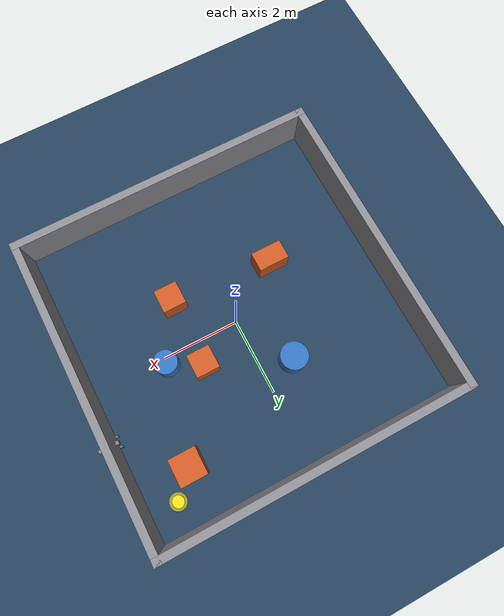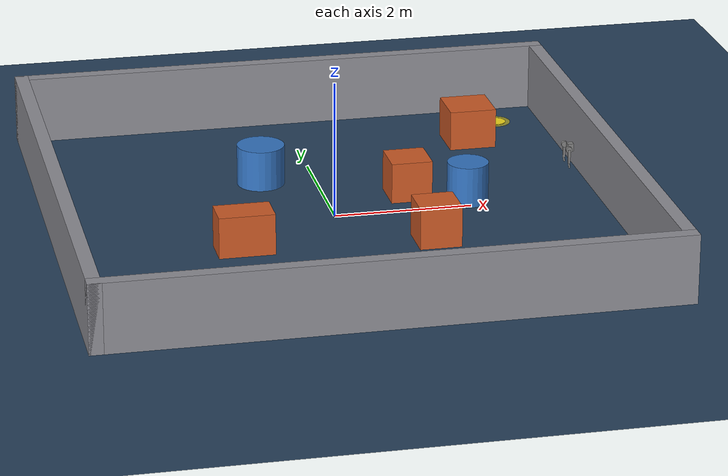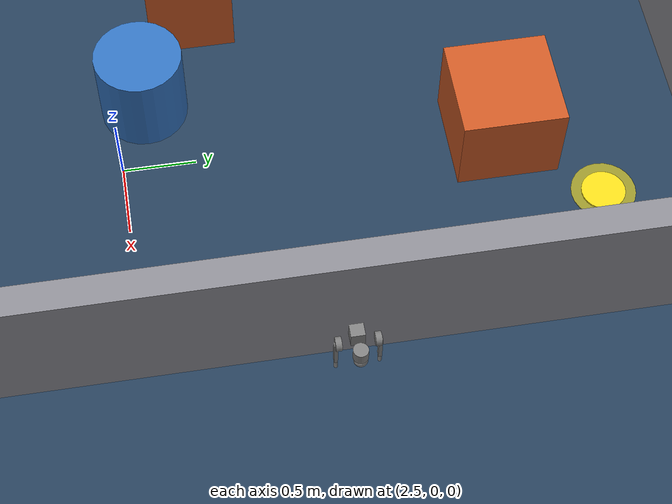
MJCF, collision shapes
<mujoco model="go2 room with obstacles">
  <include file="go2.xml"/>

  <statistic center="0 0 0.5" extent="9"/>

  <visual>
    <headlight diffuse="0.6 0.6 0.6" ambient="0.3 0.3 0.3" specular="0 0 0"/>
    <rgba haze="0.15 0.25 0.35 1"/>
    <global azimuth="-130" elevation="-25"/>
  </visual>

  <asset>
    <texture type="skybox" builtin="gradient" rgb1="0.3 0.5 0.7" rgb2="0 0 0" width="512" height="3072"/>
    <texture type="2d" name="groundplane" builtin="checker" mark="edge" rgb1="0.2 0.3 0.4" rgb2="0.1 0.2 0.3"
      markrgb="0.8 0.8 0.8" width="300" height="300"/>
    <material name="groundplane" texture="groundplane" texuniform="true" texrepeat="8 8" reflectance="0.15"/>
    <material name="wall_mat" rgba="0.55 0.55 0.58 1"/>
    <material name="obstacle_mat" rgba="0.8 0.35 0.15 1"/>
    <material name="obstacle_mat2" rgba="0.2 0.45 0.75 1"/>
  </asset>

  <worldbody>
    <light pos="0 0 3" dir="0 0 -1" directional="true"/>
    <light pos="3 3 3" dir="-1 -1 -1" directional="false" diffuse="0.3 0.3 0.3"/>
    <geom name="floor" size="0 0 0.05" type="plane" material="groundplane"/>

    <!-- Room walls: interior clear area is roughly x,y in [-3.9, 3.9] -->
    <geom name="wall_north" type="box" pos="0 4.0 0.5" size="4.1 0.1 0.5" material="wall_mat"/>
    <geom name="wall_south" type="box" pos="0 -4.0 0.5" size="4.1 0.1 0.5" material="wall_mat"/>
    <geom name="wall_east"  type="box" pos="4.0 0 0.5" size="0.1 4.1 0.5" material="wall_mat"/>
    <geom name="wall_west"  type="box" pos="-4.0 0 0.5" size="0.1 4.1 0.5" material="wall_mat"/>

    <!-- Obstacles (coordinates shared with controllers/astar_planner.py OBSTACLES list) -->
    <geom name="obs_box1" type="box" pos="1.2 0.6 0.3" size="0.3 0.3 0.3" material="obstacle_mat"/>
    <geom name="obs_box2" type="box" pos="1.2 -1.2 0.3" size="0.3 0.3 0.3" material="obstacle_mat"/>
    <geom name="obs_cyl1" type="cylinder" pos="-0.8 1.5 0.3" size="0.35 0.3" material="obstacle_mat2"/>
    <geom name="obs_box3" type="box" pos="2.6 2.6 0.3" size="0.35 0.35 0.3" material="obstacle_mat"/>
    <geom name="obs_cyl2" type="cylinder" pos="2.0 0.2 0.3" size="0.3 0.3" material="obstacle_mat2"/>
    <geom name="obs_box4" type="box" pos="-1.5 -1.0 0.3" size="0.4 0.25 0.3" material="obstacle_mat"/>

    <!-- Goal marker: fixed flat highlighted circle marking the A* target -->
    <body name="goal_marker" pos="3.2 3.2 0.05">
      <geom name="goal_ring_outer" type="cylinder" size="0.22 0.005" pos="0 0 0.001"
            rgba="0.95 0.85 0.1 0.6" contype="0" conaffinity="0"/>
      <geom name="goal_ring_inner" type="cylinder" size="0.15 0.006" pos="0 0 0.002"
            rgba="0.95 0.85 0.1 0.95" contype="0" conaffinity="0"/>
    </body>
  </worldbody>
</mujoco>

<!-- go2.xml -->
<mujoco model="go2">
  <compiler angle="radian" meshdir="assets" autolimits="true"/>

  <option cone="elliptic" impratio="100"/>

  <default>
    <default class="go2">
      <geom friction="0.6" margin="0.001" condim="1"/>
      <joint axis="0 1 0" damping="2" armature="0.01" frictionloss="0.2"/>
      <motor ctrlrange="-23.7 23.7"/>
      <default class="abduction">
        <joint axis="1 0 0" range="-1.0472 1.0472"/>
      </default>
      <default class="hip">
        <default class="front_hip">
          <joint range="-1.5708 3.4907"/>
        </default>
        <default class="back_hip">
          <joint range="-0.5236 4.5379"/>
        </default>
      </default>
      <default class="knee">
        <joint range="-2.7227 -0.83776"/>
        <motor ctrlrange="-45.43 45.43"/>
      </default>
      <default class="visual">
        <geom type="mesh" contype="0" conaffinity="0" group="2"/>
      </default>
      <default class="collision">
        <geom group="3"/>
        <default class="foot">
          <geom size="0.022" pos="-0.002 0 -0.213" priority="1" solimp="0.015 1 0.022" condim="6"
            friction="0.8 0.02 0.01"/>
        </default>
      </default>
    </default>
  </default>

  <asset>
    <material name="metal" rgba=".9 .95 .95 1"/>
    <material name="black" rgba="0 0 0 1"/>
    <material name="white" rgba="1 1 1 1"/>
    <material name="gray" rgba="0.671705 0.692426 0.774270 1"/>

    <mesh file="base_0.obj"/>
    <mesh file="base_1.obj"/>
    <mesh file="base_2.obj"/>
    <mesh file="base_3.obj"/>
    <mesh file="base_4.obj"/>
    <mesh file="hip_0.obj"/>
    <mesh file="hip_1.obj"/>
    <mesh file="thigh_0.obj"/>
    <mesh file="thigh_1.obj"/>
    <mesh file="thigh_mirror_0.obj"/>
    <mesh file="thigh_mirror_1.obj"/>
    <mesh file="calf_0.obj"/>
    <mesh file="calf_1.obj"/>
    <mesh file="calf_mirror_0.obj"/>
    <mesh file="calf_mirror_1.obj"/>
    <mesh file="foot.obj"/>
  </asset>

  <worldbody>
    <body name="trunk" pos="4 1.34 0.27">
      <inertial pos="0.021112 0 -0.005366" quat="-0.000543471 0.713435 -0.00173769 0.700719" mass="6.921"
        diaginertia="0.107027 0.0980771 0.0244531"/>
      <freejoint/>
      <geom mesh="base_0" material="black" class="visual"/>
      <geom mesh="base_1" material="black" class="visual"/>
      <geom mesh="base_2" material="black" class="visual"/>
      <geom mesh="base_3" material="white" class="visual"/>
      <geom mesh="base_4" material="gray" class="visual"/>
      <geom size="0.1881 0.04675 0.057" type="box" class="collision"/>
      <geom size="0.05 0.045" pos="0.285 0 0.01" type="cylinder" class="collision"/>
      <geom size="0.047" pos="0.293 0 -0.06" class="collision"/>
      <site name="imu" pos="-0.02557 0 0.04232"/>
      <body name="FL_hip" pos="0.1934 0.0465 0">
        <inertial pos="-0.0054 0.00194 -0.000105" quat="0.497014 0.499245 0.505462 0.498237" mass="0.678"
          diaginertia="0.00088403 0.000596003 0.000479967"/>
        <joint name="FL_hip_joint" class="abduction"/>
        <geom mesh="hip_0" material="metal" class="visual"/>
        <geom mesh="hip_1" material="gray" class="visual"/>
        <geom size="0.046 0.02" pos="0 0.08 0" quat="1 1 0 0" type="cylinder" class="collision"/>
        <body name="FL_thigh" pos="0 0.0955 0">
          <inertial pos="-0.00374 -0.0223 -0.0327" quat="0.829533 0.0847635 -0.0200632 0.551623" mass="1.152"
            diaginertia="0.00594973 0.00584149 0.000878787"/>
          <joint name="FL_thigh_joint" class="front_hip"/>
          <geom mesh="thigh_0" material="metal" class="visual"/>
          <geom mesh="thigh_1" material="gray" class="visual"/>
          <geom size="0.1065 0.01225 0.017" pos="0 0 -0.1065" quat="0.707107 0 0.707107 0" type="box"
            class="collision"/>
          <body name="FL_calf" pos="0 0 -0.213">
            <inertial pos="0.00629595 -0.000622121 -0.141417" quat="0.710672 0.00154099 -0.00450087 0.703508"
              mass="0.241352" diaginertia="0.0014901 0.00146356 5.31397e-05"/>
            <joint name="FL_calf_joint" class="knee"/>
            <geom mesh="calf_0" material="gray" class="visual"/>
            <geom mesh="calf_1" material="black" class="visual"/>
            <geom size="0.012 0.06" pos="0.008 0 -0.06" quat="0.994493 0 -0.104807 0" type="cylinder"
              class="collision"/>
            <geom size="0.011 0.0325" pos="0.02 0 -0.148" quat="0.999688 0 0.0249974 0" type="cylinder"
              class="collision"/>
            <geom pos="0 0 -0.213" mesh="foot" class="visual" material="black"/>
            <geom name="FL" class="foot"/>
          </body>
        </body>
      </body>
      <body name="FR_hip" pos="0.1934 -0.0465 0">
        <inertial pos="-0.0054 -0.00194 -0.000105" quat="0.498237 0.505462 0.499245 0.497014" mass="0.678"
          diaginertia="0.00088403 0.000596003 0.000479967"/>
        <joint name="FR_hip_joint" class="abduction"/>
        <geom mesh="hip_0" material="metal" class="visual" quat="4.63268e-05 1 0 0"/>
        <geom mesh="hip_1" material="gray" class="visual" quat="4.63268e-05 1 0 0"/>
        <geom size="0.046 0.02" pos="0 -0.08 0" quat="0.707107 0.707107 0 0" type="cylinder" class="collision"/>
        <body name="FR_thigh" pos="0 -0.0955 0">
          <inertial pos="-0.00374 0.0223 -0.0327" quat="0.551623 -0.0200632 0.0847635 0.829533" mass="1.152"
            diaginertia="0.00594973 0.00584149 0.000878787"/>
          <joint name="FR_thigh_joint" class="front_hip"/>
          <geom mesh="thigh_mirror_0" material="metal" class="visual"/>
          <geom mesh="thigh_mirror_1" material="gray" class="visual"/>
          <geom size="0.1065 0.01225 0.017" pos="0 0 -0.1065" quat="0.707107 0 0.707107 0" type="box"
            class="collision"/>
          <body name="FR_calf" pos="0 0 -0.213">
            <inertial pos="0.00629595 0.000622121 -0.141417" quat="0.703508 -0.00450087 0.00154099 0.710672"
              mass="0.241352" diaginertia="0.0014901 0.00146356 5.31397e-05"/>
            <joint name="FR_calf_joint" class="knee"/>
            <geom mesh="calf_mirror_0" material="gray" class="visual"/>
            <geom mesh="calf_mirror_1" material="black" class="visual"/>
            <geom size="0.013 0.06" pos="0.01 0 -0.06" quat="0.995004 0 -0.0998334 0" type="cylinder"
              class="collision"/>
            <geom size="0.011 0.0325" pos="0.02 0 -0.148" quat="0.999688 0 0.0249974 0" type="cylinder"
              class="collision"/>
            <geom pos="0 0 -0.213" mesh="foot" class="visual" material="black"/>
            <geom name="FR" class="foot"/>
          </body>
        </body>
      </body>
      <body name="RL_hip" pos="-0.1934 0.0465 0">
        <inertial pos="0.0054 0.00194 -0.000105" quat="0.505462 0.498237 0.497014 0.499245" mass="0.678"
          diaginertia="0.00088403 0.000596003 0.000479967"/>
        <joint name="RL_hip_joint" class="abduction"/>
        <geom mesh="hip_0" material="metal" class="visual" quat="4.63268e-05 0 1 0"/>
        <geom mesh="hip_1" material="gray" class="visual" quat="4.63268e-05 0 1 0"/>
        <geom size="0.046 0.02" pos="0 0.08 0" quat="0.707107 0.707107 0 0" type="cylinder" class="collision"/>
        <body name="RL_thigh" pos="0 0.0955 0">
          <inertial pos="-0.00374 -0.0223 -0.0327" quat="0.829533 0.0847635 -0.0200632 0.551623" mass="1.152"
            diaginertia="0.00594973 0.00584149 0.000878787"/>
          <joint name="RL_thigh_joint" class="back_hip"/>
          <geom mesh="thigh_0" material="metal" class="visual"/>
          <geom mesh="thigh_1" material="gray" class="visual"/>
          <geom size="0.1065 0.01225 0.017" pos="0 0 -0.1065" quat="0.707107 0 0.707107 0" type="box"
            class="collision"/>
          <body name="RL_calf" pos="0 0 -0.213">
            <inertial pos="0.00629595 -0.000622121 -0.141417" quat="0.710672 0.00154099 -0.00450087 0.703508"
              mass="0.241352" diaginertia="0.0014901 0.00146356 5.31397e-05"/>
            <joint name="RL_calf_joint" class="knee"/>
            <geom mesh="calf_0" material="gray" class="visual"/>
            <geom mesh="calf_1" material="black" class="visual"/>
            <geom size="0.013 0.06" pos="0.01 0 -0.06" quat="0.995004 0 -0.0998334 0" type="cylinder"
              class="collision"/>
            <geom size="0.011 0.0325" pos="0.02 0 -0.148" quat="0.999688 0 0.0249974 0" type="cylinder"
              class="collision"/>
            <geom pos="0 0 -0.213" mesh="foot" class="visual" material="black"/>
            <geom name="RL" class="foot"/>
          </body>
        </body>
      </body>
      <body name="RR_hip" pos="-0.1934 -0.0465 0">
        <inertial pos="0.0054 -0.00194 -0.000105" quat="0.499245 0.497014 0.498237 0.505462" mass="0.678"
          diaginertia="0.00088403 0.000596003 0.000479967"/>
        <joint name="RR_hip_joint" class="abduction"/>
        <geom mesh="hip_0" material="metal" class="visual" quat="2.14617e-09 4.63268e-05 4.63268e-05 -1"/>
        <geom mesh="hip_1" material="gray" class="visual" quat="2.14617e-09 4.63268e-05 4.63268e-05 -1"/>
        <geom size="0.046 0.02" pos="0 -0.08 0" quat="0.707107 0.707107 0 0" type="cylinder" class="collision"/>
        <body name="RR_thigh" pos="0 -0.0955 0">
          <inertial pos="-0.00374 0.0223 -0.0327" quat="0.551623 -0.0200632 0.0847635 0.829533" mass="1.152"
            diaginertia="0.00594973 0.00584149 0.000878787"/>
          <joint name="RR_thigh_joint" class="back_hip"/>
          <geom mesh="thigh_mirror_0" material="metal" class="visual"/>
          <geom mesh="thigh_mirror_1" material="gray" class="visual"/>
          <geom size="0.1065 0.01225 0.017" pos="0 0 -0.1065" quat="0.707107 0 0.707107 0" type="box"
            class="collision"/>
          <body name="RR_calf" pos="0 0 -0.213">
            <inertial pos="0.00629595 0.000622121 -0.141417" quat="0.703508 -0.00450087 0.00154099 0.710672"
              mass="0.241352" diaginertia="0.0014901 0.00146356 5.31397e-05"/>
            <joint name="RR_calf_joint" class="knee"/>
            <geom mesh="calf_mirror_0" material="gray" class="visual"/>
            <geom mesh="calf_mirror_1" material="black" class="visual"/>
            <geom size="0.013 0.06" pos="0.01 0 -0.06" quat="0.995004 0 -0.0998334 0" type="cylinder"
              class="collision"/>
            <geom size="0.011 0.0325" pos="0.02 0 -0.148" quat="0.999688 0 0.0249974 0" type="cylinder"
              class="collision"/>
            <geom pos="0 0 -0.213" mesh="foot" class="visual" material="black"/>
            <geom name="RR" class="foot"/>
          </body>
        </body>
      </body>
    </body>
  </worldbody>

  <actuator>
    <motor class="abduction" name="FL_hip" joint="FL_hip_joint"/>
    <motor class="hip" name="FL_thigh" joint="FL_thigh_joint"/>
    <motor class="knee" name="FL_calf" joint="FL_calf_joint"/>
    <motor class="abduction" name="FR_hip" joint="FR_hip_joint"/>
    <motor class="hip" name="FR_thigh" joint="FR_thigh_joint"/>
    <motor class="knee" name="FR_calf" joint="FR_calf_joint"/>
    <motor class="abduction" name="RL_hip" joint="RL_hip_joint"/>
    <motor class="hip" name="RL_thigh" joint="RL_thigh_joint"/>
    <motor class="knee" name="RL_calf" joint="RL_calf_joint"/>
    <motor class="abduction" name="RR_hip" joint="RR_hip_joint"/>
    <motor class="hip" name="RR_thigh" joint="RR_thigh_joint"/>
    <motor class="knee" name="RR_calf" joint="RR_calf_joint"/>
  </actuator>

  <sensor>
    <accelerometer name="imu_accel" site="imu"/>
    <gyro name="imu_gyro" site="imu"/>
    <framequat name="imu_quat" objtype="site" objname="imu"/>
  </sensor>

  <keyframe>
    <key name="home" qpos="0 0 0.27 1 0 0 0 0 0.9 -1.8 0 0.9 -1.8 0 0.9 -1.8 0 0.9 -1.8"
      ctrl="0 0.9 -1.8 0 0.9 -1.8 0 0.9 -1.8 0 0.9 -1.8"/>
  </keyframe>
</mujoco>
